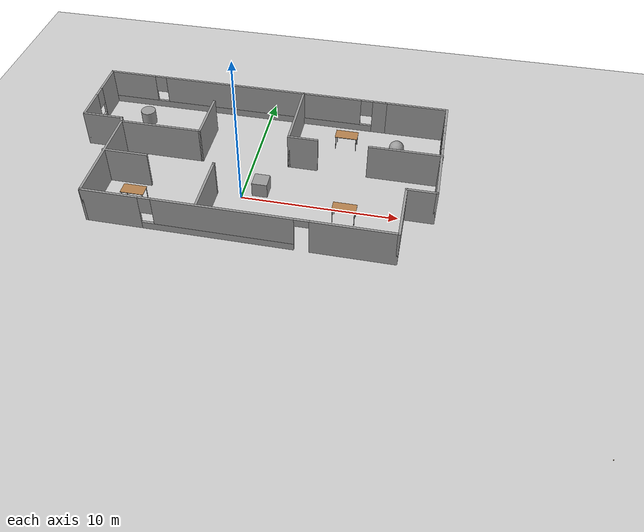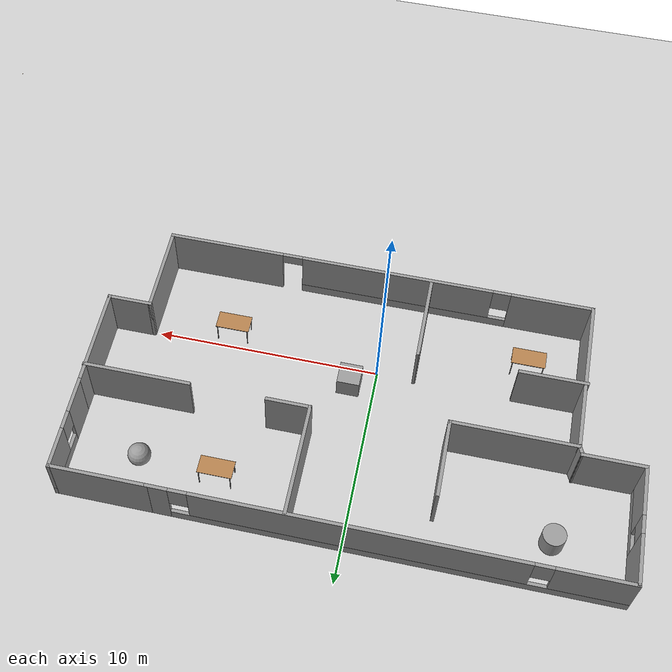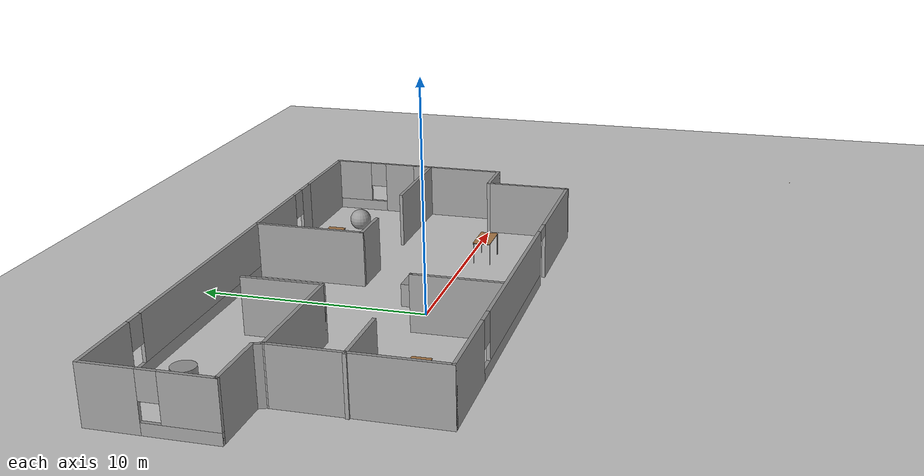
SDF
<sdf version="1.7">
 <world name="default">
  <light name="sun" type="directional">
   <pose>0 0 10 0 -0 0</pose>
   <diffuse>0.8 0.8 0.8 1</diffuse>
   <specular>0.2 0.2 0.2 1</specular>
   <attenuation>
    <range>1000</range>
    <constant>0.9</constant>
    <linear>0.01</linear>
    <quadratic>0.001</quadratic>
   </attenuation>
   <direction>-0.5 0.1 -0.9</direction>
   <spot><inner_angle>0</inner_angle><outer_angle>0</outer_angle><falloff>0</falloff></spot>
  </light>
  <model name="ground_plane">
   <static>1</static>
   <link name="link">
    <collision name="collision">
     <geometry><plane><normal>0 0 1</normal><size>100 100</size></plane></geometry>
     <surface>
      <contact><collide_bitmask>65535</collide_bitmask></contact>
      <friction><ode><mu>100</mu><mu2>50</mu2></ode></friction>
     </surface>
    </collision>
    <visual name="visual">
     <cast_shadows>0</cast_shadows>
     <geometry><plane><normal>0 0 1</normal><size>100 100</size></plane></geometry>
     <material>
      <script><uri>file://media/materials/scripts/gazebo.material</uri><name>Gazebo/Grey</name></script>
     </material>
    </visual>
   </link>
  </model>
  <gravity>0 0 -9.8</gravity>
  <magnetic_field>6e-06 2.3e-05 -4.2e-05</magnetic_field>
  <atmosphere type="adiabatic"/>
  <physics type="ode">
   <max_step_size>0.001</max_step_size>
   <real_time_factor>1</real_time_factor>
   <real_time_update_rate>1000</real_time_update_rate>
  </physics>
  <scene><ambient>0.4 0.4 0.4 1</ambient><background>0.7 0.7 0.7 1</background><shadows>1</shadows></scene>
  <spherical_coordinates>
   <surface_model>EARTH_WGS84</surface_model>
   <latitude_deg>0</latitude_deg>
   <longitude_deg>0</longitude_deg>
   <elevation>0</elevation>
   <heading_deg>0</heading_deg>
  </spherical_coordinates>
  <model name="okasha_env">
   <pose>0.305119 2.33399 0 0 -0 0</pose>
   <link name="Wall_10">
    <collision name="Wall_10_Collision">
     <geometry><box><size>4 0.15 2.5</size></box></geometry>
     <pose>0 0 1.25 0 -0 0</pose>
    </collision>
    <visual name="Wall_10_Visual">
     <pose>0 0 1.25 0 -0 0</pose>
     <geometry><box><size>4 0.15 2.5</size></box></geometry>
     <material>
      <script><uri>file://media/materials/scripts/gazebo.material</uri><name>Gazebo/Grey</name></script>
      <ambient>1 1 1 1</ambient>
     </material>
     <meta><layer>0</layer></meta>
    </visual>
    <pose>9.98214 -4.225 0 0 -0 1.5708</pose>
   </link>
   <link name="Wall_11">
    <collision name="Wall_11_Collision">
     <geometry><box><size>2 0.15 2.5</size></box></geometry>
     <pose>0 0 1.25 0 -0 0</pose>
    </collision>
    <visual name="Wall_11_Visual">
     <pose>0 0 1.25 0 -0 0</pose>
     <geometry><box><size>2 0.15 2.5</size></box></geometry>
     <material>
      <script><uri>file://media/materials/scripts/gazebo.material</uri><name>Gazebo/Grey</name></script>
      <ambient>1 1 1 1</ambient>
     </material>
     <meta><layer>0</layer></meta>
    </visual>
    <pose>10.9071 -2.3 0 0 -0 0</pose>
   </link>
   <link name="Wall_12">
    <collision name="Wall_12_Collision">
     <geometry><box><size>4.5 0.15 2.5</size></box></geometry>
     <pose>0 0 1.25 0 -0 0</pose>
    </collision>
    <visual name="Wall_12_Visual">
     <pose>0 0 1.25 0 -0 0</pose>
     <geometry><box><size>4.5 0.15 2.5</size></box></geometry>
     <material>
      <script><uri>file://media/materials/scripts/gazebo.material</uri><name>Gazebo/Grey</name></script>
      <ambient>1 1 1 1</ambient>
     </material>
     <meta><layer>0</layer></meta>
    </visual>
    <pose>11.8321 -0.125 0 0 -0 1.5708</pose>
   </link>
   <link name="Wall_14">
    <pose>11.8321 4.1 0 0 -0 1.5708</pose>
    <visual name="Wall_14_Visual_0">
     <pose>-1.3105 0 1.25 0 -0 0</pose>
     <geometry><box><size>1.629 0.15 2.5</size></box></geometry>
     <material>
      <script><uri>file://media/materials/scripts/gazebo.material</uri><name>Gazebo/Grey</name></script>
      <ambient>1 1 1 1</ambient>
     </material>
     <meta><layer>0</layer></meta>
    </visual>
    <collision name="Wall_14_Collision_0">
     <geometry><box><size>1.629 0.15 2.5</size></box></geometry>
     <pose>-1.3105 0 1.25 0 -0 0</pose>
    </collision>
    <visual name="Wall_14_Visual_1">
     <pose>0.814502 0 0.25 0 -0 0</pose>
     <geometry><box><size>2.621 0.15 0.5</size></box></geometry>
     <material>
      <script><uri>file://media/materials/scripts/gazebo.material</uri><name>Gazebo/Grey</name></script>
      <ambient>1 1 1 1</ambient>
     </material>
     <meta><layer>0</layer></meta>
    </visual>
    <collision name="Wall_14_Collision_1">
     <geometry><box><size>2.621 0.15 0.5</size></box></geometry>
     <pose>0.814502 0 0.25 0 -0 0</pose>
    </collision>
    <visual name="Wall_14_Visual_2">
     <pose>1.2145 0 1.5 0 -0 0</pose>
     <geometry><box><size>1.821 0.15 2</size></box></geometry>
     <material>
      <script><uri>file://media/materials/scripts/gazebo.material</uri><name>Gazebo/Grey</name></script>
      <ambient>1 1 1 1</ambient>
     </material>
     <meta><layer>0</layer></meta>
    </visual>
    <collision name="Wall_14_Collision_2">
     <geometry><box><size>1.821 0.15 2</size></box></geometry>
     <pose>1.2145 0 1.5 0 -0 0</pose>
    </collision>
    <visual name="Wall_14_Visual_3">
     <pose>-0.095996 0 1.9 0 -0 0</pose>
     <geometry><box><size>0.8 0.15 1.2</size></box></geometry>
     <material>
      <script><uri>file://media/materials/scripts/gazebo.material</uri><name>Gazebo/Grey</name></script>
      <ambient>1 1 1 1</ambient>
     </material>
     <meta><layer>0</layer></meta>
    </visual>
    <collision name="Wall_14_Collision_3">
     <geometry><box><size>0.8 0.15 1.2</size></box></geometry>
     <pose>-0.095996 0 1.9 0 -0 0</pose>
    </collision>
   </link>
   <link name="Wall_15">
    <collision name="Wall_15_Collision">
     <geometry><box><size>4.25 0.15 2.5</size></box></geometry>
     <pose>0 0 1.25 0 -0 0</pose>
    </collision>
    <visual name="Wall_15_Visual">
     <pose>0 0 1.25 0 -0 0</pose>
     <geometry><box><size>4.25 0.15 2.5</size></box></geometry>
     <material>
      <script><uri>file://media/materials/scripts/gazebo.material</uri><name>Gazebo/Grey</name></script>
      <ambient>1 1 1 1</ambient>
     </material>
     <meta><layer>0</layer></meta>
    </visual>
    <pose>9.78214 6.15 0 0 -0 3.14159</pose>
   </link>
   <link name="Wall_17">
    <pose>-2.06786 6.15 0 0 -0 3.14159</pose>
    <visual name="Wall_17_Visual_0">
     <pose>-9.39036 0 1.25 0 -0 0</pose>
     <geometry><box><size>0.969275 0.15 2.5</size></box></geometry>
     <material>
      <script><uri>file://media/materials/scripts/gazebo.material</uri><name>Gazebo/Grey</name></script>
      <ambient>1 1 1 1</ambient>
     </material>
     <meta><layer>0</layer></meta>
    </visual>
    <collision name="Wall_17_Collision_0">
     <geometry><box><size>0.969275 0.15 2.5</size></box></geometry>
     <pose>-9.39036 0 1.25 0 -0 0</pose>
    </collision>
    <visual name="Wall_17_Visual_1">
     <pose>0.484638 0 0.25 0 -0 0</pose>
     <geometry><box><size>18.7807 0.15 0.5</size></box></geometry>
     <material>
      <script><uri>file://media/materials/scripts/gazebo.material</uri><name>Gazebo/Grey</name></script>
      <ambient>1 1 1 1</ambient>
     </material>
     <meta><layer>0</layer></meta>
    </visual>
    <collision name="Wall_17_Collision_1">
     <geometry><box><size>18.7807 0.15 0.5</size></box></geometry>
     <pose>0.484638 0 0.25 0 -0 0</pose>
    </collision>
    <visual name="Wall_17_Visual_2">
     <pose>-1.15572 0 1.5 0 -0 0</pose>
     <geometry><box><size>13.9 0.15 2</size></box></geometry>
     <material>
      <script><uri>file://media/materials/scripts/gazebo.material</uri><name>Gazebo/Grey</name></script>
      <ambient>1 1 1 1</ambient>
     </material>
     <meta><layer>0</layer></meta>
    </visual>
    <collision name="Wall_17_Collision_2">
     <geometry><box><size>13.9 0.15 2</size></box></geometry>
     <pose>-1.15572 0 1.5 0 -0 0</pose>
    </collision>
    <visual name="Wall_17_Visual_3">
     <pose>8.23464 0 1.5 0 -0 0</pose>
     <geometry><box><size>3.28072 0.15 2</size></box></geometry>
     <material>
      <script><uri>file://media/materials/scripts/gazebo.material</uri><name>Gazebo/Grey</name></script>
      <ambient>1 1 1 1</ambient>
     </material>
     <meta><layer>0</layer></meta>
    </visual>
    <collision name="Wall_17_Collision_3">
     <geometry><box><size>3.28072 0.15 2</size></box></geometry>
     <pose>8.23464 0 1.5 0 -0 0</pose>
    </collision>
    <visual name="Wall_17_Visual_4">
     <pose>-8.50572 0 1.9 0 -0 0</pose>
     <geometry><box><size>0.8 0.15 1.2</size></box></geometry>
     <material>
      <script><uri>file://media/materials/scripts/gazebo.material</uri><name>Gazebo/Grey</name></script>
      <ambient>1 1 1 1</ambient>
     </material>
     <meta><layer>0</layer></meta>
    </visual>
    <collision name="Wall_17_Collision_4">
     <geometry><box><size>0.8 0.15 1.2</size></box></geometry>
     <pose>-8.50572 0 1.9 0 -0 0</pose>
    </collision>
    <visual name="Wall_17_Visual_5">
     <pose>6.19428 0 1.9 0 -0 0</pose>
     <geometry><box><size>0.8 0.15 1.2</size></box></geometry>
     <material>
      <script><uri>file://media/materials/scripts/gazebo.material</uri><name>Gazebo/Grey</name></script>
      <ambient>1 1 1 1</ambient>
     </material>
     <meta><layer>0</layer></meta>
    </visual>
    <collision name="Wall_17_Collision_5">
     <geometry><box><size>0.8 0.15 1.2</size></box></geometry>
     <pose>6.19428 0 1.9 0 -0 0</pose>
    </collision>
   </link>
   <link name="Wall_18">
    <pose>-11.8679 3.6 0 0 -0 -1.5708</pose>
    <visual name="Wall_18_Visual_0">
     <pose>-1.5045 0 1.25 0 -0 0</pose>
     <geometry><box><size>2.241 0.15 2.5</size></box></geometry>
     <material>
      <script><uri>file://media/materials/scripts/gazebo.material</uri><name>Gazebo/Grey</name></script>
      <ambient>1 1 1 1</ambient>
     </material>
     <meta><layer>0</layer></meta>
    </visual>
    <collision name="Wall_18_Collision_0">
     <geometry><box><size>2.241 0.15 2.5</size></box></geometry>
     <pose>-1.5045 0 1.25 0 -0 0</pose>
    </collision>
    <visual name="Wall_18_Visual_1">
     <pose>1.1205 0 0.25 0 -0 0</pose>
     <geometry><box><size>3.009 0.15 0.5</size></box></geometry>
     <material>
      <script><uri>file://media/materials/scripts/gazebo.material</uri><name>Gazebo/Grey</name></script>
      <ambient>1 1 1 1</ambient>
     </material>
     <meta><layer>0</layer></meta>
    </visual>
    <collision name="Wall_18_Collision_1">
     <geometry><box><size>3.009 0.15 0.5</size></box></geometry>
     <pose>1.1205 0 0.25 0 -0 0</pose>
    </collision>
    <visual name="Wall_18_Visual_2">
     <pose>1.5205 0 1.5 0 -0 0</pose>
     <geometry><box><size>2.209 0.15 2</size></box></geometry>
     <material>
      <script><uri>file://media/materials/scripts/gazebo.material</uri><name>Gazebo/Grey</name></script>
      <ambient>1 1 1 1</ambient>
     </material>
     <meta><layer>0</layer></meta>
    </visual>
    <collision name="Wall_18_Collision_2">
     <geometry><box><size>2.209 0.15 2</size></box></geometry>
     <pose>1.5205 0 1.5 0 -0 0</pose>
    </collision>
    <visual name="Wall_18_Visual_3">
     <pose>0.015996 0 1.9 0 -0 0</pose>
     <geometry><box><size>0.8 0.15 1.2</size></box></geometry>
     <material>
      <script><uri>file://media/materials/scripts/gazebo.material</uri><name>Gazebo/Grey</name></script>
      <ambient>1 1 1 1</ambient>
     </material>
     <meta><layer>0</layer></meta>
    </visual>
    <collision name="Wall_18_Collision_3">
     <geometry><box><size>0.8 0.15 1.2</size></box></geometry>
     <pose>0.015996 0 1.9 0 -0 0</pose>
    </collision>
   </link>
   <link name="Wall_19">
    <collision name="Wall_19_Collision">
     <geometry><box><size>2.75 0.15 2.5</size></box></geometry>
     <pose>0 0 1.25 0 -0 0</pose>
    </collision>
    <visual name="Wall_19_Visual">
     <pose>0 0 1.25 0 -0 0</pose>
     <geometry><box><size>2.75 0.15 2.5</size></box></geometry>
     <material>
      <script><uri>file://media/materials/scripts/gazebo.material</uri><name>Gazebo/Grey</name></script>
      <ambient>1 1 1 1</ambient>
     </material>
     <meta><layer>0</layer></meta>
    </visual>
    <pose>-10.5679 1.05 0 0 -0 0</pose>
   </link>
   <link name="Wall_20">
    <collision name="Wall_20_Collision">
     <geometry><box><size>0.530789 0.15 2.5</size></box></geometry>
     <pose>0 0 1.25 0 -0 0</pose>
    </collision>
    <visual name="Wall_20_Visual">
     <pose>0 0 1.25 0 -0 0</pose>
     <geometry><box><size>0.530789 0.15 2.5</size></box></geometry>
     <material>
      <script><uri>file://media/materials/scripts/gazebo.material</uri><name>Gazebo/Grey</name></script>
      <ambient>1 1 1 1</ambient>
     </material>
     <meta><layer>0</layer></meta>
    </visual>
    <pose>-9.19286 0.875 0 0 -0 -1.1659</pose>
   </link>
   <link name="Wall_21">
    <collision name="Wall_21_Collision">
     <geometry><box><size>5.5 0.15 2.5</size></box></geometry>
     <pose>0 0 1.25 0 -0 0</pose>
    </collision>
    <visual name="Wall_21_Visual">
     <pose>0 0 1.25 0 -0 0</pose>
     <geometry><box><size>5.5 0.15 2.5</size></box></geometry>
     <material>
      <script><uri>file://media/materials/scripts/gazebo.material</uri><name>Gazebo/Grey</name></script>
      <ambient>1 1 1 1</ambient>
     </material>
     <meta><layer>0</layer></meta>
    </visual>
    <pose>-6.44286 0.7 0 0 -0 0</pose>
   </link>
   <link name="Wall_22">
    <collision name="Wall_22_Collision">
     <geometry><box><size>3.5 0.15 2.5</size></box></geometry>
     <pose>0 0 1.25 0 -0 0</pose>
    </collision>
    <visual name="Wall_22_Visual">
     <pose>0 0 1.25 0 -0 0</pose>
     <geometry><box><size>3.5 0.15 2.5</size></box></geometry>
     <material>
      <script><uri>file://media/materials/scripts/gazebo.material</uri><name>Gazebo/Grey</name></script>
      <ambient>1 1 1 1</ambient>
     </material>
     <meta><layer>0</layer></meta>
    </visual>
    <pose>-3.76786 2.375 0 0 -0 1.5708</pose>
   </link>
   <link name="Wall_24">
    <collision name="Wall_24_Collision">
     <geometry><box><size>4 0.15 2.5</size></box></geometry>
     <pose>0 0 1.25 0 -0 0</pose>
    </collision>
    <visual name="Wall_24_Visual">
     <pose>0 0 1.25 0 -0 0</pose>
     <geometry><box><size>4 0.15 2.5</size></box></geometry>
     <material>
      <script><uri>file://media/materials/scripts/gazebo.material</uri><name>Gazebo/Grey</name></script>
      <ambient>1 1 1 1</ambient>
     </material>
     <meta><layer>0</layer></meta>
    </visual>
    <pose>-1.96214 -4.211 0 0 -0 1.5708</pose>
   </link>
   <link name="Wall_25">
    <collision name="Wall_25_Collision">
     <geometry><box><size>0.15 0.15 2.5</size></box></geometry>
     <pose>0 0 1.25 0 -0 0</pose>
    </collision>
    <visual name="Wall_25_Visual">
     <pose>0 0 1.25 0 -0 0</pose>
     <geometry><box><size>0.15 0.15 2.5</size></box></geometry>
     <material>
      <script><uri>file://media/materials/scripts/gazebo.material</uri><name>Gazebo/Grey</name></script>
      <ambient>1 1 1 1</ambient>
     </material>
     <meta><layer>0</layer></meta>
    </visual>
    <pose>-1.96214 -2.286 0 0 -0 0</pose>
   </link>
   <link name="Wall_27">
    <collision name="Wall_27_Collision">
     <geometry><box><size>3 0.15 2.5</size></box></geometry>
     <pose>0 0 1.25 0 -0 0</pose>
    </collision>
    <visual name="Wall_27_Visual">
     <pose>0 0 1.25 0 -0 0</pose>
     <geometry><box><size>3 0.15 2.5</size></box></geometry>
     <material>
      <script><uri>file://media/materials/scripts/gazebo.material</uri><name>Gazebo/Grey</name></script>
      <ambient>1 1 1 1</ambient>
     </material>
     <meta><layer>0</layer></meta>
    </visual>
    <pose>-7.76714 -2.326 0 0 -0 0</pose>
   </link>
   <link name="Wall_29">
    <collision name="Wall_29_Collision">
     <geometry><box><size>4.75 0.15 2.5</size></box></geometry>
     <pose>0 0 1.25 0 -0 0</pose>
    </collision>
    <visual name="Wall_29_Visual">
     <pose>0 0 1.25 0 -0 0</pose>
     <geometry><box><size>4.75 0.15 2.5</size></box></geometry>
     <material>
      <script><uri>file://media/materials/scripts/gazebo.material</uri><name>Gazebo/Grey</name></script>
      <ambient>1 1 1 1</ambient>
     </material>
     <meta><layer>0</layer></meta>
    </visual>
    <pose>9.56786 1.244 0 0 -0 3.14159</pose>
   </link>
   <link name="Wall_31">
    <collision name="Wall_31_Collision">
     <geometry><box><size>5 0.15 2.5</size></box></geometry>
     <pose>0 0 1.25 0 -0 0</pose>
    </collision>
    <visual name="Wall_31_Visual">
     <pose>0 0 1.25 0 -0 0</pose>
     <geometry><box><size>5 0.15 2.5</size></box></geometry>
     <material>
      <script><uri>file://media/materials/scripts/gazebo.material</uri><name>Gazebo/Grey</name></script>
      <ambient>1 1 1 1</ambient>
     </material>
     <meta><layer>0</layer></meta>
    </visual>
    <pose>2.02786 3.679 0 0 -0 -1.5708</pose>
   </link>
   <link name="Wall_32">
    <collision name="Wall_32_Collision">
     <geometry><box><size>2 0.15 2.5</size></box></geometry>
     <pose>0 0 1.25 0 -0 0</pose>
    </collision>
    <visual name="Wall_32_Visual">
     <pose>0 0 1.25 0 -0 0</pose>
     <geometry><box><size>2 0.15 2.5</size></box></geometry>
     <material>
      <script><uri>file://media/materials/scripts/gazebo.material</uri><name>Gazebo/Grey</name></script>
      <ambient>1 1 1 1</ambient>
     </material>
     <meta><layer>0</layer></meta>
    </visual>
    <pose>2.95286 1.254 0 0 -0 0</pose>
   </link>
   <link name="Wall_8">
    <collision name="Wall_8_Collision">
     <geometry><box><size>7 0.15 2.5</size></box></geometry>
     <pose>0 0 1.25 0 -0 0</pose>
    </collision>
    <visual name="Wall_8_Visual">
     <pose>0 0 1.25 0 -0 0</pose>
     <geometry><box><size>7 0.15 2.5</size></box></geometry>
     <material>
      <script><uri>file://media/materials/scripts/gazebo.material</uri><name>Gazebo/Grey</name></script>
      <ambient>1 1 1 1</ambient>
     </material>
     <meta><layer>0</layer></meta>
    </visual>
    <pose>-9.11786 -2.725 0 0 -0 -1.5708</pose>
   </link>
   <link name="Wall_9">
    <pose>0.432138 -6.15 0 0 -0 0</pose>
    <visual name="Wall_9_Visual_0">
     <pose>-7.78464 0 1.25 0 -0 0</pose>
     <geometry><box><size>3.68072 0.15 2.5</size></box></geometry>
     <material>
      <script><uri>file://media/materials/scripts/gazebo.material</uri><name>Gazebo/Grey</name></script>
      <ambient>1 1 1 1</ambient>
     </material>
     <meta><layer>0</layer></meta>
    </visual>
    <collision name="Wall_9_Collision_0">
     <geometry><box><size>3.68072 0.15 2.5</size></box></geometry>
     <pose>-7.78464 0 1.25 0 -0 0</pose>
    </collision>
    <visual name="Wall_9_Visual_1">
     <pose>7.00536 0 1.25 0 -0 0</pose>
     <geometry><box><size>5.23928 0.15 2.5</size></box></geometry>
     <material>
      <script><uri>file://media/materials/scripts/gazebo.material</uri><name>Gazebo/Grey</name></script>
      <ambient>1 1 1 1</ambient>
     </material>
     <meta><layer>0</layer></meta>
    </visual>
    <collision name="Wall_9_Collision_1">
     <geometry><box><size>5.23928 0.15 2.5</size></box></geometry>
     <pose>7.00536 0 1.25 0 -0 0</pose>
    </collision>
    <visual name="Wall_9_Visual_2">
     <pose>-1.22927 0 0.25 0 -0 0</pose>
     <geometry><box><size>9.43 0.15 0.5</size></box></geometry>
     <material>
      <script><uri>file://media/materials/scripts/gazebo.material</uri><name>Gazebo/Grey</name></script>
      <ambient>1 1 1 1</ambient>
     </material>
     <meta><layer>0</layer></meta>
    </visual>
    <collision name="Wall_9_Collision_2">
     <geometry><box><size>9.43 0.15 0.5</size></box></geometry>
     <pose>-1.22927 0 0.25 0 -0 0</pose>
    </collision>
    <visual name="Wall_9_Visual_3">
     <pose>-0.829275 0 1.5 0 -0 0</pose>
     <geometry><box><size>8.63 0.15 2</size></box></geometry>
     <material>
      <script><uri>file://media/materials/scripts/gazebo.material</uri><name>Gazebo/Grey</name></script>
      <ambient>1 1 1 1</ambient>
     </material>
     <meta><layer>0</layer></meta>
    </visual>
    <collision name="Wall_9_Collision_3">
     <geometry><box><size>8.63 0.15 2</size></box></geometry>
     <pose>-0.829275 0 1.5 0 -0 0</pose>
    </collision>
    <visual name="Wall_9_Visual_4">
     <pose>-5.54427 0 1.9 0 -0 0</pose>
     <geometry><box><size>0.8 0.15 1.2</size></box></geometry>
     <material>
      <script><uri>file://media/materials/scripts/gazebo.material</uri><name>Gazebo/Grey</name></script>
      <ambient>1 1 1 1</ambient>
     </material>
     <meta><layer>0</layer></meta>
    </visual>
    <collision name="Wall_9_Collision_4">
     <geometry><box><size>0.8 0.15 1.2</size></box></geometry>
     <pose>-5.54427 0 1.9 0 -0 0</pose>
    </collision>
    <visual name="Wall_9_Visual_5">
     <pose>3.93573 0 2.25 0 -0 0</pose>
     <geometry><box><size>0.9 0.15 0.5</size></box></geometry>
     <material>
      <script><uri>file://media/materials/scripts/gazebo.material</uri><name>Gazebo/Grey</name></script>
      <ambient>1 1 1 1</ambient>
     </material>
     <meta><layer>0</layer></meta>
    </visual>
    <collision name="Wall_9_Collision_5">
     <geometry><box><size>0.9 0.15 0.5</size></box></geometry>
     <pose>3.93573 0 2.25 0 -0 0</pose>
    </collision>
   </link>
   <static>1</static>
  </model>
  <model name="ball_bearing">
   <link name="link">
    <pose>0 0 0.003 0 -0 0</pose>
    <inertial>
     <mass>0.0011</mass>
     <inertia>
      <ixx>3.96e-09</ixx>
      <ixy>0</ixy>
      <ixz>0</ixz>
      <iyy>3.96e-09</iyy>
      <iyz>0</iyz>
      <izz>3.96e-09</izz>
     </inertia>
    </inertial>
    <collision name="collision">
     <geometry><sphere><radius>0.003</radius></sphere></geometry>
     <surface>
      <contact>
       <poissons_ratio>0.305</poissons_ratio>
       <elastic_modulus>2e+11</elastic_modulus>
       <ode><kp>100000</kp><kd>100</kd><max_vel>100</max_vel><min_depth>0.001</min_depth></ode>
      </contact>
      <friction>
       <torsional>
        <coefficient>1</coefficient>
        <use_patch_radius>0</use_patch_radius>
        <surface_radius>0.01</surface_radius>
       </torsional>
      </friction>
     </surface>
    </collision>
    <visual name="visual">
     <geometry><sphere><radius>0.003</radius></sphere></geometry>
     <material>
      <script><uri>file://media/materials/scripts/gazebo.material</uri><name>Gazebo/Grey</name></script>
     </material>
    </visual>
    <velocity_decay><linear>0</linear><angular>0.005</angular></velocity_decay>
   </link>
   <pose>2.24433 1.46422 -0.000375 0 -0 0</pose>
  </model>
  <model name="ball_bearing_0">
   <link name="link">
    <pose>0 0 0.003 0 -0 0</pose>
    <inertial>
     <mass>0.0011</mass>
     <inertia>
      <ixx>3.96e-09</ixx>
      <ixy>0</ixy>
      <ixz>0</ixz>
      <iyy>3.96e-09</iyy>
      <iyz>0</iyz>
      <izz>3.96e-09</izz>
     </inertia>
    </inertial>
    <collision name="collision">
     <geometry><sphere><radius>0.003</radius></sphere></geometry>
     <surface>
      <contact>
       <poissons_ratio>0.305</poissons_ratio>
       <elastic_modulus>2e+11</elastic_modulus>
       <ode><kp>100000</kp><kd>100</kd><max_vel>100</max_vel><min_depth>0.001</min_depth></ode>
      </contact>
      <friction>
       <torsional>
        <coefficient>1</coefficient>
        <use_patch_radius>0</use_patch_radius>
        <surface_radius>0.01</surface_radius>
       </torsional>
      </friction>
     </surface>
    </collision>
    <visual name="visual">
     <geometry><sphere><radius>0.003</radius></sphere></geometry>
     <material>
      <script><uri>file://media/materials/scripts/gazebo.material</uri><name>Gazebo/Grey</name></script>
     </material>
    </visual>
    <velocity_decay><linear>0</linear><angular>0.005</angular></velocity_decay>
   </link>
   <pose>1.94277 0.244922 -0.000321 0 -0 0</pose>
  </model>
  <model name="table">
   <static>1</static>
   <link name="link">
    <collision name="surface">
     <pose>0 0 1 0 -0 0</pose>
     <geometry><box><size>1.5 0.8 0.03</size></box></geometry>
     <surface><friction><ode><mu>0.6</mu><mu2>0.6</mu2></ode></friction></surface>
    </collision>
    <visual name="visual1">
     <pose>0 0 1 0 -0 0</pose>
     <geometry><box><size>1.5 0.8 0.03</size></box></geometry>
     <material>
      <script><uri>file://media/materials/scripts/gazebo.material</uri><name>Gazebo/Wood</name></script>
     </material>
    </visual>
    <collision name="front_left_leg">
     <pose>0.68 0.38 0.5 0 -0 0</pose>
     <geometry><cylinder><radius>0.02</radius><length>1</length></cylinder></geometry>
    </collision>
    <visual name="front_left_leg">
     <pose>0.68 0.38 0.5 0 -0 0</pose>
     <geometry><cylinder><radius>0.02</radius><length>1</length></cylinder></geometry>
     <material>
      <script><uri>file://media/materials/scripts/gazebo.material</uri><name>Gazebo/Grey</name></script>
     </material>
    </visual>
    <collision name="front_right_leg">
     <pose>0.68 -0.38 0.5 0 -0 0</pose>
     <geometry><cylinder><radius>0.02</radius><length>1</length></cylinder></geometry>
    </collision>
    <visual name="front_right_leg">
     <pose>0.68 -0.38 0.5 0 -0 0</pose>
     <geometry><cylinder><radius>0.02</radius><length>1</length></cylinder></geometry>
     <material>
      <script><uri>file://media/materials/scripts/gazebo.material</uri><name>Gazebo/Grey</name></script>
     </material>
    </visual>
    <collision name="back_right_leg">
     <pose>-0.68 -0.38 0.5 0 -0 0</pose>
     <geometry><cylinder><radius>0.02</radius><length>1</length></cylinder></geometry>
    </collision>
    <visual name="back_right_leg">
     <pose>-0.68 -0.38 0.5 0 -0 0</pose>
     <geometry><cylinder><radius>0.02</radius><length>1</length></cylinder></geometry>
     <material>
      <script><uri>file://media/materials/scripts/gazebo.material</uri><name>Gazebo/Grey</name></script>
     </material>
    </visual>
    <collision name="back_left_leg">
     <pose>-0.68 0.38 0.5 0 -0 0</pose>
     <geometry><cylinder><radius>0.02</radius><length>1</length></cylinder></geometry>
    </collision>
    <visual name="back_left_leg">
     <pose>-0.68 0.38 0.5 0 -0 0</pose>
     <geometry><cylinder><radius>0.02</radius><length>1</length></cylinder></geometry>
     <material>
      <script><uri>file://media/materials/scripts/gazebo.material</uri><name>Gazebo/Grey</name></script>
     </material>
    </visual>
   </link>
   <pose>5.73244 6.41802 0 0 -0 0</pose>
  </model>
  <model name="table_0">
   <static>1</static>
   <link name="link">
    <collision name="surface">
     <pose>0 0 1 0 -0 0</pose>
     <geometry><box><size>1.5 0.8 0.03</size></box></geometry>
     <surface><friction><ode><mu>0.6</mu><mu2>0.6</mu2></ode></friction></surface>
    </collision>
    <visual name="visual1">
     <pose>0 0 1 0 -0 0</pose>
     <geometry><box><size>1.5 0.8 0.03</size></box></geometry>
     <material>
      <script><uri>file://media/materials/scripts/gazebo.material</uri><name>Gazebo/Wood</name></script>
     </material>
    </visual>
    <collision name="front_left_leg">
     <pose>0.68 0.38 0.5 0 -0 0</pose>
     <geometry><cylinder><radius>0.02</radius><length>1</length></cylinder></geometry>
    </collision>
    <visual name="front_left_leg">
     <pose>0.68 0.38 0.5 0 -0 0</pose>
     <geometry><cylinder><radius>0.02</radius><length>1</length></cylinder></geometry>
     <material>
      <script><uri>file://media/materials/scripts/gazebo.material</uri><name>Gazebo/Grey</name></script>
     </material>
    </visual>
    <collision name="front_right_leg">
     <pose>0.68 -0.38 0.5 0 -0 0</pose>
     <geometry><cylinder><radius>0.02</radius><length>1</length></cylinder></geometry>
    </collision>
    <visual name="front_right_leg">
     <pose>0.68 -0.38 0.5 0 -0 0</pose>
     <geometry><cylinder><radius>0.02</radius><length>1</length></cylinder></geometry>
     <material>
      <script><uri>file://media/materials/scripts/gazebo.material</uri><name>Gazebo/Grey</name></script>
     </material>
    </visual>
    <collision name="back_right_leg">
     <pose>-0.68 -0.38 0.5 0 -0 0</pose>
     <geometry><cylinder><radius>0.02</radius><length>1</length></cylinder></geometry>
    </collision>
    <visual name="back_right_leg">
     <pose>-0.68 -0.38 0.5 0 -0 0</pose>
     <geometry><cylinder><radius>0.02</radius><length>1</length></cylinder></geometry>
     <material>
      <script><uri>file://media/materials/scripts/gazebo.material</uri><name>Gazebo/Grey</name></script>
     </material>
    </visual>
    <collision name="back_left_leg">
     <pose>-0.68 0.38 0.5 0 -0 0</pose>
     <geometry><cylinder><radius>0.02</radius><length>1</length></cylinder></geometry>
    </collision>
    <visual name="back_left_leg">
     <pose>-0.68 0.38 0.5 0 -0 0</pose>
     <geometry><cylinder><radius>0.02</radius><length>1</length></cylinder></geometry>
     <material>
      <script><uri>file://media/materials/scripts/gazebo.material</uri><name>Gazebo/Grey</name></script>
     </material>
    </visual>
   </link>
   <pose>-6.4682 -1.67956 0 0 -0 0</pose>
  </model>
  <model name="table_1">
   <static>1</static>
   <link name="link">
    <collision name="surface">
     <pose>0 0 1 0 -0 0</pose>
     <geometry><box><size>1.5 0.8 0.03</size></box></geometry>
     <surface><friction><ode><mu>0.6</mu><mu2>0.6</mu2></ode></friction></surface>
    </collision>
    <visual name="visual1">
     <pose>0 0 1 0 -0 0</pose>
     <geometry><box><size>1.5 0.8 0.03</size></box></geometry>
     <material>
      <script><uri>file://media/materials/scripts/gazebo.material</uri><name>Gazebo/Wood</name></script>
     </material>
    </visual>
    <collision name="front_left_leg">
     <pose>0.68 0.38 0.5 0 -0 0</pose>
     <geometry><cylinder><radius>0.02</radius><length>1</length></cylinder></geometry>
    </collision>
    <visual name="front_left_leg">
     <pose>0.68 0.38 0.5 0 -0 0</pose>
     <geometry><cylinder><radius>0.02</radius><length>1</length></cylinder></geometry>
     <material>
      <script><uri>file://media/materials/scripts/gazebo.material</uri><name>Gazebo/Grey</name></script>
     </material>
    </visual>
    <collision name="front_right_leg">
     <pose>0.68 -0.38 0.5 0 -0 0</pose>
     <geometry><cylinder><radius>0.02</radius><length>1</length></cylinder></geometry>
    </collision>
    <visual name="front_right_leg">
     <pose>0.68 -0.38 0.5 0 -0 0</pose>
     <geometry><cylinder><radius>0.02</radius><length>1</length></cylinder></geometry>
     <material>
      <script><uri>file://media/materials/scripts/gazebo.material</uri><name>Gazebo/Grey</name></script>
     </material>
    </visual>
    <collision name="back_right_leg">
     <pose>-0.68 -0.38 0.5 0 -0 0</pose>
     <geometry><cylinder><radius>0.02</radius><length>1</length></cylinder></geometry>
    </collision>
    <visual name="back_right_leg">
     <pose>-0.68 -0.38 0.5 0 -0 0</pose>
     <geometry><cylinder><radius>0.02</radius><length>1</length></cylinder></geometry>
     <material>
      <script><uri>file://media/materials/scripts/gazebo.material</uri><name>Gazebo/Grey</name></script>
     </material>
    </visual>
    <collision name="back_left_leg">
     <pose>-0.68 0.38 0.5 0 -0 0</pose>
     <geometry><cylinder><radius>0.02</radius><length>1</length></cylinder></geometry>
    </collision>
    <visual name="back_left_leg">
     <pose>-0.68 0.38 0.5 0 -0 0</pose>
     <geometry><cylinder><radius>0.02</radius><length>1</length></cylinder></geometry>
     <material>
      <script><uri>file://media/materials/scripts/gazebo.material</uri><name>Gazebo/Grey</name></script>
     </material>
    </visual>
   </link>
   <pose>6.71859 -0.740904 0 0 -0 0</pose>
  </model>
  <model name="wood_cube_2_5cm">
   <link name="link">
    <pose>0 0 0.0125 0 -0 0</pose>
    <inertial>
     <mass>0.0073</mass>
     <inertia>
      <ixx>7.60417e-07</ixx>
      <ixy>0</ixy>
      <ixz>0</ixz>
      <iyy>7.60417e-07</iyy>
      <iyz>0</iyz>
      <izz>7.60417e-07</izz>
     </inertia>
    </inertial>
    <collision name="collision">
     <geometry><box><size>0.025 0.025 0.025</size></box></geometry>
     <surface>
      <contact>
       <poissons_ratio>0.347</poissons_ratio>
       <elastic_modulus>8.8e+09</elastic_modulus>
       <ode><kp>100000</kp><kd>100</kd><max_vel>100</max_vel><min_depth>0.001</min_depth></ode>
      </contact>
      <friction>
       <torsional>
        <coefficient>1</coefficient>
        <use_patch_radius>0</use_patch_radius>
        <surface_radius>0.01</surface_radius>
       </torsional>
      </friction>
     </surface>
    </collision>
    <visual name="visual">
     <geometry><box><size>0.025 0.025 0.025</size></box></geometry>
     <material>
      <script><uri>file://media/materials/scripts/gazebo.material</uri><name>Gazebo/Wood</name></script>
     </material>
    </visual>
   </link>
   <pose>21.6449 -14.1684 -0.000178 2.7e-05 -2.7e-05 0</pose>
  </model>
  <model name="unit_box">
   <pose>1.117 0.800343 0.5 0 -0 0</pose>
   <link name="link">
    <inertial>
     <mass>1</mass>
     <inertia>
      <ixx>0.166667</ixx>
      <ixy>0</ixy>
      <ixz>0</ixz>
      <iyy>0.166667</iyy>
      <iyz>0</iyz>
      <izz>0.166667</izz>
     </inertia>
    </inertial>
    <collision name="collision"><geometry><box><size>1 1 1</size></box></geometry></collision>
    <visual name="visual">
     <geometry><box><size>1 1 1</size></box></geometry>
     <material>
      <script><name>Gazebo/Grey</name><uri>file://media/materials/scripts/gazebo.material</uri></script>
     </material>
    </visual>
   </link>
  </model>
  <model name="unit_sphere">
   <pose>9.15704 6.29408 0.5 0 -0 0</pose>
   <link name="link">
    <inertial>
     <mass>1</mass>
     <inertia><ixx>0.1</ixx><ixy>0</ixy><ixz>0</ixz><iyy>0.1</iyy><iyz>0</iyz><izz>0.1</izz></inertia>
    </inertial>
    <collision name="collision"><geometry><sphere><radius>0.5</radius></sphere></geometry></collision>
    <visual name="visual">
     <geometry><sphere><radius>0.5</radius></sphere></geometry>
     <material>
      <script><name>Gazebo/Grey</name><uri>file://media/materials/scripts/gazebo.material</uri></script>
     </material>
    </visual>
   </link>
  </model>
  <model name="unit_cylinder">
   <pose>-8.39054 6.42092 0.5 0 -0 0</pose>
   <link name="link">
    <inertial>
     <mass>1</mass>
     <inertia><ixx>0.145833</ixx><ixy>0</ixy><ixz>0</ixz><iyy>0.145833</iyy><iyz>0</iyz><izz>0.125</izz></inertia>
    </inertial>
    <collision name="collision">
     <geometry><cylinder><radius>0.5</radius><length>1</length></cylinder></geometry>
    </collision>
    <visual name="visual">
     <geometry><cylinder><radius>0.5</radius><length>1</length></cylinder></geometry>
     <material>
      <script><name>Gazebo/Grey</name><uri>file://media/materials/scripts/gazebo.material</uri></script>
     </material>
    </visual>
   </link>
  </model>
 </world>
</sdf>
